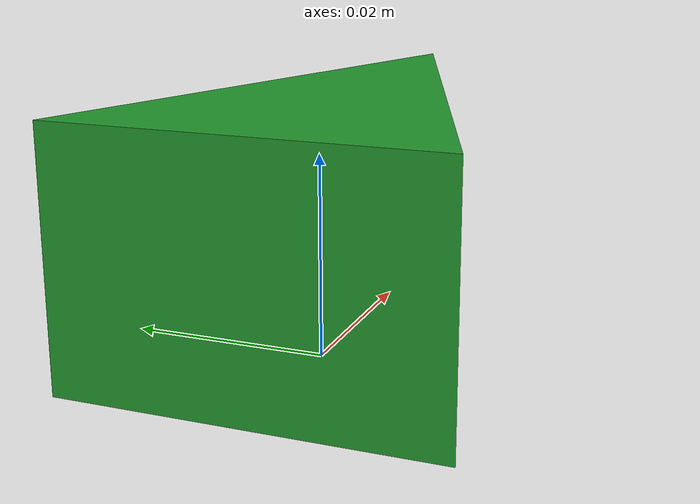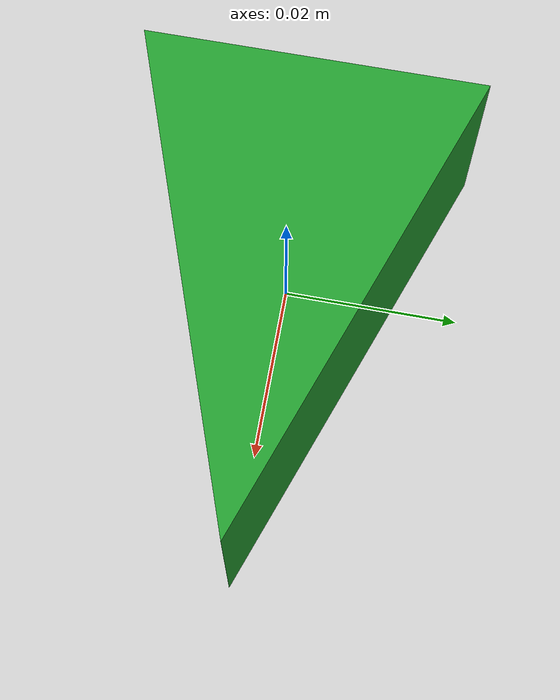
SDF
<sdf version='1.6'>
  <model name='triangle'>
    <link name='triangle_link'>
      <pose frame=''>0 0 0 0 -0 0</pose>
      <inertial>
        <pose frame=''>0 0 0.025 0 -0 0</pose>
        <mass>0.195406</mass>
        <inertia>
          <ixx>8.5709e-05</ixx>
          <ixy>6.97378e-20</ixy>
          <ixz>4.16316e-20</ixz>
          <iyy>0.000160708</iyy>
          <iyz>-1.19497e-20</iyz>
          <izz>0.000164998</izz>
        </inertia>
      </inertial>
      <collision name='triangle_link_collision'>
        <pose frame=''>0 0 0 0 -0 0</pose>
        <geometry>
          <mesh>
            <scale>0.5 0.5 0.5</scale>
            <uri>model://triangle/meshes/triangle_link.STL</uri>
          </mesh>
        </geometry>
      </collision>
      <visual name='triangle_link_visual'>
        <pose frame=''>0 0 0 0 -0 0</pose>
        <geometry>
          <mesh>
            <scale>0.5 0.5 0.5</scale>
            <uri>model://triangle/meshes/triangle_link.STL</uri>
          </mesh>
        </geometry>
        <material>
        <script>
          <name>Gazebo/Green</name>
          <uri>file://media/materials/scripts/gazebo.material</uri>
        </script>
      </material>
      </visual>
    </link>
  </model>
</sdf>
